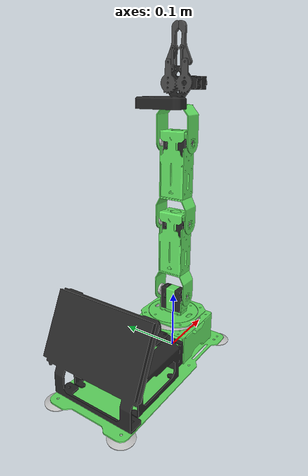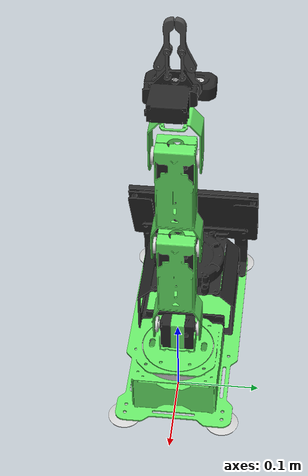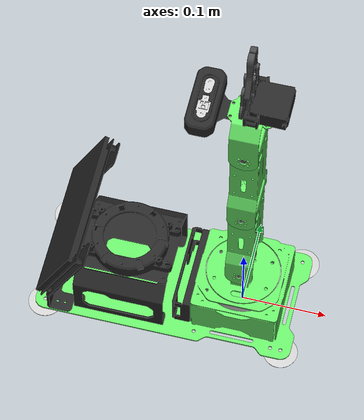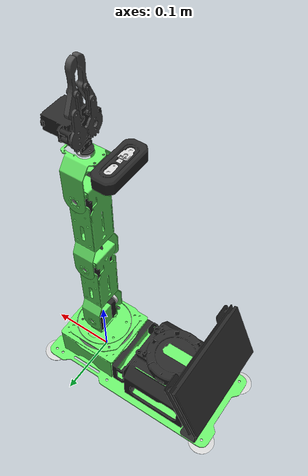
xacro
<?xml version="1.0" encoding="utf-8"?>

<robot xmlns:xacro="http://www.ros.org/wiki/xacro" name="jetarm_6dof">
    <xacro:arg name="prefix" default=""/>
    <xacro:arg name="camera_type" default="GEMINI"/>

    <!-- Import jetarm macro -->
    <xacro:include filename="$(find jetarm_6dof_description)/urdf/jetarm_6dof_description.urdf.xacro"/>

    <!-- Import Rviz colors -->
    <xacro:include filename="$(find jetarm_6dof_description)/urdf/materials.xacro"/>

    <!-- Import jetarm ros_control description -->
    <xacro:include filename="$(find jetarm_6dof_description)/gazebo/jetarm.gazebo.xacro" />
    <xacro:include filename="$(find jetarm_6dof_description)/gazebo/jetarm.transmission.xacro" />

    <!-- Used for fixing robot -->
    <link name="$(arg prefix)world"/>
    <gazebo reference="$(arg prefix)world">
        <static>true</static>
    </gazebo>

    <xacro:jetarm_6dof parent="$(arg prefix)world" prefix="$(arg prefix)" camera_type="$(arg camera_type)">
    	<origin xyz="0 0 0" rpy="0 0 0"/>
    </xacro:jetarm_6dof>

    <xacro:jetarm_gazebo prefix="$(arg prefix)"></xacro:jetarm_gazebo>
    <xacro:jetarm_gazeboo_transmission prefix="$(arg prefix)"></xacro:jetarm_gazeboo_transmission>
</robot>

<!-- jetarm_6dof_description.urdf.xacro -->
<robot xmlns:xacro="http://ros.org/wiki/xacro">
    <!-- parameters -->
    <xacro:property name="my_pi" value="3.1415926535897931"/>

    <!-- Joint properties -->
    <xacro:property name="joint_lower_limit" value="-${3.14}"/>
    <xacro:property name="joint_upper_limit" value="${3.14}"/>
    <xacro:property name="joint_effort" value="6.0"/>
    <xacro:property name="joint_velocity" value="0.524"/>
    <!-- COLORS -->
    <xacro:property name="jetarm_green" value="0.4 0.9 0.4 1.0"/>
    <xacro:property name="jetarm_black" value="0.15 0.15 0.15 1.0"/>

    <xacro:macro name="jetarm_6dof" params="camera_type prefix parent **origin">
        <joint name="${prefix}base_joint" type="fixed">
            <parent link="${parent}"/>
            <child link="${prefix}base_link"/>
	    <xacro:insert_block name="origin"/>
        </joint>
        <link name="${prefix}base_link">
            <visual>
		<origin xyz="0.0 0.0 0.0" rpy="0.0 0.0 ${-my_pi/2}"/>
                <geometry>
                    <mesh filename="package://jetarm_6dof_description/meshes/jetarm_6dof/JetArm_6DOF_BASE_GREEN.STL"
                          scale="0.001 0.001 0.001"/>
                </geometry>
                <material name="jetarm_green">
                    <color rgba="${jetarm_green}"/>
                </material>
            </visual>

            <visual>
		<origin xyz="0.0 0.0 0.0" rpy="0.0 0.0 ${-my_pi/2}"/>
                <geometry>
                    <mesh filename="package://jetarm_6dof_description/meshes/jetarm_6dof/JetArm_6DOF_BASE_BLACK.STL"
                          scale="0.001 0.001 0.001"/>
                </geometry>
                <material name="black">
                    <color rgba="${jetarm_black}"/>
                </material>
            </visual>

            <visual>
		<origin xyz="0.0 0.0 0.0" rpy="0.0 0.0 ${-my_pi/2}"/>
                <geometry>
                    <mesh filename="package://jetarm_6dof_description/meshes/jetarm_6dof/JetArm_6DOF_BASE_SCREEN.STL"
                          scale="0.001 0.001 0.001"/>
                </geometry>
                <material name="black">
                    <color rgba="${jetarm_black}"/>
                </material>
	    </visual>

            <visual>
		<origin xyz="0.0 0.0 0.0" rpy="0.0 0.0 ${-my_pi/2}"/>
                <geometry>
                    <mesh filename="package://jetarm_6dof_description/meshes/jetarm_6dof/JetArm_6DOF_BASE_WHITE.STL"
                          scale="0.001 0.001 0.001"/>
                </geometry>
                <material name="white">
                    <color rgba="0.8 0.8 0.8 1.0"/>
                </material>
            </visual>

            <collision>
		<origin xyz="0.0 0.0 0.0" rpy="0.0 0.0 ${-my_pi/2}"/>
                <geometry>
                    <mesh filename="package://jetarm_6dof_description/meshes/jetarm_6dof/JetArm_6DOF_BASE.STL"
                          scale="0.001 0.001 0.001"/>
                </geometry>
            </collision>
            <inertial>
		<origin xyz="0.0 0.0 0.0" rpy="0.0 0.0 ${-my_pi/2}"/>
                <mass value="0.1"/>
                <inertia ixx="1.0" ixy="0.0" ixz="0.0" iyy="1.0" iyz="0.0" izz="1.0"/>
            </inertial>
        </link>
        <joint name="${prefix}joint1" type="revolute">
            <parent link="${prefix}base_link"/>
            <child link="${prefix}link1"/>
	    <origin xyz="0.0 0.0 0.10314916202" rpy="0.0 0.0 0.0"/>
            <limit lower="-2.1" upper="2.1" effort="${joint_effort}" velocity="${joint_velocity}"/>
            <axis xyz="0 0 1"/>
        </joint>
        <link name="${prefix}link1">
            <visual>
                <origin xyz="0.0 0.0 0.0" rpy="0.0 0.0 0.0"/>
                <geometry>
                    <mesh filename="package://jetarm_6dof_description/meshes/jetarm_6dof/JetArm_6DOF_LINK1_BLACK.STL"
                          scale="0.001 0.001 0.001"/>
                </geometry>
                <material name="black">
                    <color rgba="${jetarm_black}"/>
                </material>
            </visual>
            <visual>
                <origin xyz="0.0 0.0 0.0" rpy="0.0 0.0 0.0"/>
                <geometry>
                    <mesh filename="package://jetarm_6dof_description/meshes/jetarm_6dof/JetArm_6DOF_LINK1_GREEN.STL"
                          scale="0.001 0.001 0.001"/>
                </geometry>
                <material name="jetarm_green">
                    <color rgba="${jetarm_green}"/>
                </material>
            </visual>

            <collision>
                <origin xyz="0.0 0.0 0.0" rpy="0.0 0.0 0.0"/>
                <geometry>
                    <mesh filename="package://jetarm_6dof_description/meshes/jetarm_6dof/JetArm_6DOF_LINK1.STL"
                          scale="0.001 0.001 0.001"/>
                </geometry>
            </collision>

            <inertial>
                <origin xyz="0.0 0.0 0.0" rpy="0.0 0.0 0.0"/>
                <mass value="0.001"/>
                <inertia ixx="1.0" ixy="0.0" ixz="0.0" iyy="1.0" iyz="0.0" izz="1.0"/>
            </inertial>
        </link>
        <joint name="${prefix}joint2" type="revolute">
            <parent link="${prefix}link1"/>
            <child link="${prefix}link2"/>
            <origin xyz="0.0 0.0 0.0" rpy="${my_pi/2} 0.0 0.0"/>
            <limit lower="-2.1" upper="2.1" effort="${joint_effort}" velocity="${joint_velocity}"/>
            <axis xyz="0 0 1"/>
        </joint>
        <link name="${prefix}link2">
            <visual>
                <origin xyz="0.0 0.0 0.0" rpy="0.0 0.0 0.0"/>
                <geometry>
                    <mesh filename="package://jetarm_6dof_description/meshes/jetarm_6dof/JetArm_6DOF_LINK2_GREEN.STL"
                          scale="0.001 0.001 0.001"/>
                </geometry>
                <material name="jetarm_green">
                    <color rgba="${jetarm_green}"/>
                </material>
            </visual>

            <visual>
                <origin xyz="0.0 0.0 0.0" rpy="0.0 0.0 0.0"/>
                <geometry>
                    <mesh filename="package://jetarm_6dof_description/meshes/jetarm_6dof/JetArm_6DOF_LINK2_WHITE.STL"
                          scale="0.001 0.001 0.001"/>
                </geometry>
                <material name="white">
                    <color rgba="0.8 0.8 0.8 1.0"/>
                </material>
            </visual>

            <visual>
                <origin xyz="0.0 0.0 0.0" rpy="0.0 0.0 0.0"/>
                <geometry>
                    <mesh filename="package://jetarm_6dof_description/meshes/jetarm_6dof/JetArm_6DOF_LINK2_BLACK.STL"
                          scale="0.001 0.001 0.001"/>
                </geometry>
                <material name="black">
                    <color rgba="${jetarm_black}"/>
                </material>
            </visual>

            <collision>
                <origin xyz="0.0 0.0 0.0" rpy="0.0 0.0 0.0"/>
                <geometry>
                    <mesh filename="package://jetarm_6dof_description/meshes/jetarm_6dof/JetArm_6DOF_LINK2.STL"
                          scale="0.001 0.001 0.001"/>
                </geometry>
            </collision>

            <inertial>
                <origin xyz="0.0 0.0 0.0" rpy="0.0 0.0 0.0"/>
                <mass value="0.001"/>
                <inertia ixx="1.0" ixy="0.0" ixz="0.0" iyy="1.0" iyz="0.0" izz="1.0"/>
            </inertial>
        </link>
        <joint name="${prefix}joint3" type="revolute">
            <parent link="${prefix}link2"/>
            <child link="${prefix}link3"/>
            <origin xyz="0.0 0.12941763737 0.0" rpy="0.0 0.0 0.0"/>
            <limit lower="-2.1" upper="2.1" effort="${joint_effort}" velocity="${joint_velocity}"/>
            <axis xyz="0 0 1"/>
        </joint>
        <link name="${prefix}link3">
            <visual>
                <origin xyz="0.0 0.0 0.0" rpy="0.0 0.0 0.0"/>
                <geometry>
                    <mesh filename="package://jetarm_6dof_description/meshes/jetarm_6dof/JetArm_6DOF_LINK3_GREEN.STL"
                          scale="0.001 0.001 0.001"/>
                </geometry>
                <material name="jetarm_green">
                    <color rgba="${jetarm_green}"/>
                </material>
            </visual>

            <visual>
                <origin xyz="0.0 0.0 0.0" rpy="0.0 0.0 0.0"/>
                <geometry>
                    <mesh filename="package://jetarm_6dof_description/meshes/jetarm_6dof/JetArm_6DOF_LINK3_WHITE.STL"
                          scale="0.001 0.001 0.001"/>
                </geometry>
                <material name="white">
                    <color rgba="0.8 0.8 0.8 1.0"/>
                </material>
            </visual>

            <visual>
                <origin xyz="0.0 0.0 0.0" rpy="0.0 0.0 0.0"/>
                <geometry>
                    <mesh filename="package://jetarm_6dof_description/meshes/jetarm_6dof/JetArm_6DOF_LINK3_BLACK.STL"
                          scale="0.001 0.001 0.001"/>
                </geometry>
                <material name="black">
                    <color rgba="${jetarm_black}"/>
                </material>
            </visual>

            <collision>
                <origin xyz="0.0 0.0 0.0" rpy="0.0 0.0 0.0"/>
                <geometry>
                    <mesh filename="package://jetarm_6dof_description/meshes/jetarm_6dof/JetArm_6DOF_LINK3.STL"
                          scale="0.001 0.001 0.001"/>
                </geometry>
            </collision>

            <inertial>
                <origin xyz="0.0 0.0 0.0" rpy="0.0 0.0 0.0"/>
                <mass value="0.001"/>
                <inertia ixx="1.0" ixy="0.0" ixz="0.0" iyy="1.0" iyz="0.0" izz="1.0"/>
            </inertial>
        </link>
        <joint name="${prefix}joint4" type="revolute">
            <parent link="${prefix}link3"/>
            <child link="${prefix}link4"/>
            <origin xyz="0.0 0.12941763737 0.0" rpy="0.0 0.0 0.0"/>
            <limit lower="-2.1" upper="2.1" effort="${joint_effort}" velocity="${joint_velocity}"/>
            <axis xyz="0 0 1"/>
        </joint>
        <link name="${prefix}link4">
            <visual>
                <origin xyz="0.0 0.0 0.0" rpy="0.0 0.0 0.0"/>
                <geometry>
                    <mesh filename="package://jetarm_6dof_description/meshes/jetarm_6dof/JetArm_6DOF_LINK4_${camera_type}_GREEN.STL"
                          scale="0.001 0.001 0.001"/>
                </geometry>
                <material name="jetarm_green">
                    <color rgba="${jetarm_green}"/>
                </material>
            </visual>

            <visual>
                <origin xyz="0.0 0.0 0.0" rpy="0.0 0.0 0.0"/>
                <geometry>
                    <mesh filename="package://jetarm_6dof_description/meshes/jetarm_6dof/JetArm_6DOF_LINK4_${camera_type}_WHITE.STL"
                          scale="0.001 0.001 0.001"/>
                </geometry>
                <material name="white">
                    <color rgba="0.8 0.8 0.8 1.0"/>
                </material>
            </visual>

            <visual>
                <origin xyz="0.0 0.0 0.0" rpy="0.0 0.0 0.0"/>
                <geometry>
                    <mesh filename="package://jetarm_6dof_description/meshes/jetarm_6dof/JetArm_6DOF_LINK4_${camera_type}_BLACK.STL"
                          scale="0.001 0.001 0.001"/>
                </geometry>
                <material name="black">
                    <color rgba="${jetarm_black}"/>
                </material>
            </visual>

            <collision>
                <origin xyz="0.0 0.0 0.0" rpy="0.0 0.0 0.0"/>
                <geometry>
                    <mesh filename="package://jetarm_6dof_description/meshes/jetarm_6dof/JetArm_6DOF_LINK4_${camera_type}.STL"
                          scale="0.001 0.001 0.001"/>
                </geometry>
            </collision>

            <inertial>
                <origin xyz="0.0 0.0 0.0" rpy="0.0 0.0 0.0"/>
                <mass value="0.001"/>
                <inertia ixx="1.0" ixy="0.0" ixz="0.0" iyy="1.0" iyz="0.0" izz="1.0"/>
            </inertial>
        </link>
        <joint name="${prefix}joint5" type="revolute">
            <parent link="${prefix}link4"/>
            <child link="${prefix}link5"/>
            <origin xyz="0.0 0.05945312631 0.0" rpy="${-my_pi/2} 0.0 0.0"/>
            <limit lower="-2.1" upper="2.1" effort="${joint_effort}" velocity="${joint_velocity}"/>
            <axis xyz="0 0 1"/>
        </joint>
        <link name="${prefix}link5">
            <visual>
                <origin xyz="0.0 0.0 0.0" rpy="0.0 0.0 0.0"/>
                <geometry>
                    <mesh filename="package://jetarm_6dof_description/meshes/jetarm_6dof/JetArm_6DOF_LINK5_WHITE.STL"
                          scale="0.001 0.001 0.001"/>
                </geometry>
                <material name="white">
                    <color rgba="0.8 0.8 0.8 1.0"/>
                </material>
            </visual>

            <collision>
                <origin xyz="0.0 0.0 0.0" rpy="0.0 0.0 0.0"/>
                <geometry>
                    <mesh filename="package://jetarm_6dof_description/meshes/jetarm_6dof/JetArm_6DOF_LINK5.STL"
                          scale="0.001 0.001 0.001"/>
                </geometry>
            </collision>

            <inertial>
                <origin xyz="0.0 0.0 0.0" rpy="0.0 0.0 0.0"/>
                <mass value="0.001"/>
                <inertia ixx="1.0" ixy="0.0" ixz="0.0" iyy="1.0" iyz="0.0" izz="1.0"/>
            </inertial>
        </link>
        <joint name="endpoint" type="fixed">
            <origin xyz="0 0 0.11054687369" rpy="0 0 0"/>
            <parent link="link5"/>
            <child link="endpoint"/>
            <axis xyz="0 0 0"/>
        </joint>
        <link name="endpoint"/>

        <link
                name="gripper_servo_link">
            <inertial>
                <origin xyz="0.00173398274658465 0.0143803550122597 0.0668818334351561" rpy="0 0 0"/>
                <mass value="0.0174988102544488"/>
                <inertia
                        ixx="1.57024155329016E-06"
                        ixy="2.76817630588513E-08"
                        ixz="2.23194266007272E-08"
                        iyy="4.12618454370932E-06"
                        iyz="3.03828124784084E-10"
                        izz="3.2611413740062E-06"/>
            </inertial>
            <visual>
                <origin xyz="0 0 0" rpy="0 0 0"/>
                <geometry>
                    <mesh filename="package://jetarm_6dof_description/meshes/Gripper_Base.STL" scale="0.001 0.001 0.001"/>
                </geometry>
                <material name="black">
                    <color rgba="${jetarm_black}"/>
                </material>
            </visual>
            <collision>
                <origin xyz="0 0 0" rpy="0 0 0"/>
                <geometry>
                    <mesh filename="package://jetarm_6dof_description/meshes/Gripper_Base.STL" scale="0.001 0.001 0.001"/>
                </geometry>
            </collision>
        </link>
        <joint name="gripper_servo_joint" type="fixed">
            <origin xyz="0 0 0" rpy="0 0 0"/>
            <parent link="link5"/>
            <child link="gripper_servo_link"/>
            <axis xyz="0 0 0"/>
        </joint>
        <xacro:include filename="$(find jetarm_6dof_description)/urdf/gripper.urdf.xacro"/>
    </xacro:macro>
</robot>

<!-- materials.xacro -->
<robot>
    <material name="black">
        <color rgba="0.3 0.3 0.3 1.0"/>
    </material>

    <material name="blue">
        <color rgba="0.0 0.0 0.8 1.0"/>
    </material>

    <material name="green">
        <color rgba="0.3 0.6 0.3 1.0"/>
    </material>

    <material name="gray">
        <color rgba="0.7 0.7 0.7 1.0"/>
    </material>

    <material name="darkgray">
        <color rgba="0.3 0.3 0.3 1.0"/>
    </material>

    <material name="red">
        <color rgba="0.8 0.0 0.0 1.0"/>
    </material>

    <material name="white">
        <color rgba="1.0 1.0 1.0 1.0"/>
    </material>

    <material name="yellow">
        <color rgba="0.8 0.8 0.0 1.0"/>
    </material>
</robot>

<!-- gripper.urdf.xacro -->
<robot name="gripper" xmlns:xacro="http://ros.org/wiki/xacro">
    <xacro:property name="M_PI" value="3.1415926535897931"/>
    <link name="r_link">
        <inertial>
            <origin xyz="0.000541257829657527 -0.00150000000696238 0.00625150798228247" rpy="0 0 0"/>
            <mass value="0.00001"/>
            <inertia
                    ixx="10"
                    ixy="0"
                    ixz="0"
                    iyy="10"
                    iyz="0"
                    izz="10"/>
        </inertial>
        <visual>
            <origin xyz="0 0 0" rpy="0 0 0"/>
            <geometry>
                <mesh filename="package://jetarm_6dof_description/meshes/gripper/r_link.stl"/>
            </geometry>
            <material name="black"/>
        </visual>
        <collision>
            <origin xyz="0 0 0" rpy="0 0 0"/>
            <geometry>
                <mesh filename="package://jetarm_6dof_description/meshes/gripper/r_link.stl"/>
            </geometry>
        </collision>
    </link>
    <joint name="r_joint" type="revolute">
        <origin xyz="-0.00704769 -0.01399984321 0.02700709328" rpy="0 0 ${M_PI / 2}"/>
        <parent link="gripper_servo_link"/>
        <child link="r_link"/>
        <axis xyz="0 -1 0"/>
        <limit
                lower="0"
                upper="1.57"
                effort="1000"
                velocity="2"/>
    </joint>
    <link name="l_link">
        <inertial>
            <origin xyz="0.0054115 -0.0015023 0.0058059" rpy="0 0 0"/>
            <mass value="0.00001"/>
            <inertia
                    ixx="10"
                    ixy="0"
                    ixz="0"
                    iyy="10"
                    iyz="0"
                    izz="10"/>
        </inertial>
        <visual>
            <origin xyz="0 0 0" rpy="0 0 0"/>
            <geometry>
                <mesh filename="package://jetarm_6dof_description/meshes/gripper/l_link.stl"/>
            </geometry>
            <material name="black"/>
        </visual>
        <collision>
            <origin xyz="0 0 0" rpy="0 0 0"/>
            <geometry>
                <mesh filename="package://jetarm_6dof_description/meshes/gripper/l_link.stl"/>
            </geometry>
        </collision>
    </link>
    <joint name="l_joint" type="revolute">
        <origin xyz="-0.0073115 0.01400015081 0.027008 " rpy="0 0 ${M_PI/2}"/>
        <parent link="gripper_servo_link"/>
        <child link="l_link"/>
        <axis xyz="0 -1 0"/>
        <limit
                lower="-1.57"
                upper="1.57"
                effort="1000"
                velocity="2"/>
        <mimic
                joint="r_joint"
                multiplier="-1"
                offset="0"/>
    </joint>
    <link name="r_in_link">
        <inertial>
            <origin xyz="-1.7319E-09 -0.006 0.0145" rpy="0 0 0"/>
            <mass value="0.00001"/>
            <inertia
                    ixx="10"
                    ixy="0"
                    ixz="0"
                    iyy="10"
                    iyz="0"
                    izz="10"/>
        </inertial>
        <visual>
            <origin xyz="0 0 0" rpy="0 0 0"/>
            <geometry>
                <mesh filename="package://jetarm_6dof_description/meshes/gripper/r_in_link.stl"/>
            </geometry>
            <material name="black"/>
        </visual>
        <collision>
            <origin xyz="0 0 0" rpy="0 0 0"/>
            <geometry>
                <mesh filename="package://jetarm_6dof_description/meshes/gripper/r_in_link.stl"/>
            </geometry>
        </collision>
    </link>
    <joint name="r_in_joint" type="revolute">
        <origin xyz="-0.0065253 -0.0075039 0.04599137946" rpy="0 0 ${M_PI/2}"/>
        <parent link="gripper_servo_link"/>
        <child link="r_in_link"/>
        <axis xyz="0 1 0"/>
        <mimic
                joint="r_joint"
                multiplier="-1"
                offset="0"/>
        <limit
                lower="-1.57"
                upper="1.57"
                effort="1000"
                velocity="2"/>
    </joint>
    <link name="r_out_link">
        <inertial>
            <origin xyz="-0.0013784 -0.0060519 0.0096418" rpy="0 0 0"/>
            <mass value="0.00001"/>
            <inertia
                    ixx="10"
                    ixy="0"
                    ixz="0"
                    iyy="10"
                    iyz="0"
                    izz="10"/>
        </inertial>
        <visual>
            <origin xyz="0 0 0" rpy="0 0 0"/>
            <geometry>
                <mesh filename="package://jetarm_6dof_description/meshes/gripper/r_out_link.stl"/>
            </geometry>
            <material name="black"/>
        </visual>
        <collision>
            <origin xyz="0 0 0" rpy="0 0 0"/>
            <geometry>
                <mesh filename="package://jetarm_6dof_description/meshes/gripper/r_out_link.stl"/>
            </geometry>
        </collision>
    </link>
    <joint name="r_out_joint" type="revolute">
        <origin xyz="0 0 0.029" rpy="0 0 0"/>
        <parent link="r_in_link"/>
        <child link="r_out_link"/>
        <axis xyz="0 1 0"/>
        <mimic
                joint="r_joint"
                multiplier="1"
                offset="0"/>
        <limit
                lower="-1.57"
                upper="1.57"
                effort="1000"
                velocity="2"/>
    </joint>
    <link name="l_in_link">
        <inertial>
            <origin xyz="-1.7319E-09 -0.006 0.0145" rpy="0 0 0"/>
            <mass value="0.00001"/>
            <inertia
                    ixx="10"
                    ixy="0"
                    ixz="0"
                    iyy="10"
                    iyz="0"
                    izz="10"/>
        </inertial>
        <visual>
            <origin xyz="0 0 0" rpy="0 0 0"/>
            <geometry>
                <mesh filename="package://jetarm_6dof_description/meshes/gripper/l_in_link.stl"/>
            </geometry>
            <material name="black"/>
        </visual>
        <collision>
            <origin xyz="0 0 0" rpy="0 0 0"/>
            <geometry>
                <mesh filename="package://jetarm_6dof_description/meshes/gripper/l_in_link.stl"/>
            </geometry>
        </collision>
    </link>
    <joint name="l_in_joint" type="revolute">
        <origin xyz="-0.0065053 0.0075039 0.04599108168" rpy="0 0 ${M_PI/2}"/>
        <parent link="gripper_servo_link"/>
        <child link="l_in_link"/>
        <axis xyz="0 -1 0"/>
        <mimic
                joint="r_joint"
                multiplier="-1"
                offset="0"/>
        <limit
                lower="-1.57"
                upper="1.57"
                effort="1000"
                velocity="2"/>
    </joint>
    <link name="l_out_link">
        <inertial>
            <origin xyz="0.0013784 -0.0060519 0.0096418" rpy="0 0 0"/>
            <mass value="0.00001"/>
            <inertia
                    ixx="10"
                    ixy="0"
                    ixz="0"
                    iyy="10"
                    iyz="0"
                    izz="10"/>
        </inertial>
        <visual>
            <origin xyz="0 0 0" rpy="0 0 0"/>
            <geometry>
                <mesh filename="package://jetarm_6dof_description/meshes/gripper/l_out_link.stl"/>
            </geometry>
            <material name="black"/>
        </visual>
        <collision>
            <origin xyz="0 0 0" rpy="0 0 0"/>
            <geometry>
                <mesh filename="package://jetarm_6dof_description/meshes/gripper/l_out_link.stl"/>
            </geometry>
        </collision>
    </link>
    <joint name="l_out_joint" type="revolute">
        <origin xyz="0 0 0.029" rpy="0 0 0"/>
        <parent link="l_in_link"/>
        <child link="l_out_link"/>
        <axis xyz="0 -1 0"/>
        <mimic
                joint="r_joint"
                multiplier="1"
                offset="0"/>
        <limit
                lower="-1.57"
                upper="1.57"
                effort="1000"
                velocity="2"/>
    </joint>
</robot>
